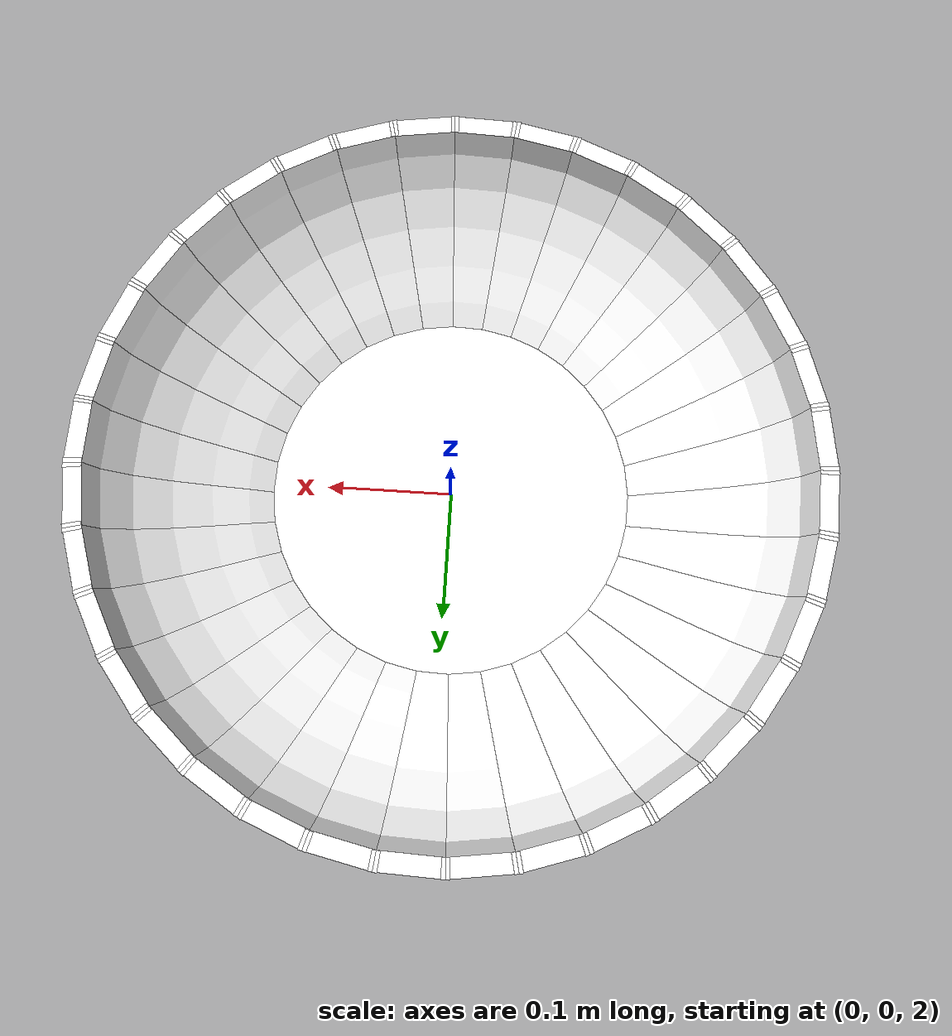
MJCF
<mujoco>
    <compiler angle="radian" />
    <compiler meshdir="bowl/stl/" />
    <asset>
        <mesh name="bowl_side" file="bowl_side.stl" />
        <mesh name="bowl_bottom" file="bowl_bottom.stl" />
    </asset>
    <worldbody>
        <body name="bowl" pos="0 0 2">
            <freejoint />
            <geom name="bowl_bottom" type="mesh" mesh="bowl_bottom" rgba="1 1 1 1" />
            <geom name="bowl_side_1" type="mesh" euler="0 0 0.1745" mesh="bowl_side" rgba="1 1 1 1" />
            <geom name="bowl_side_2" type="mesh" euler="0 0 0.3491" mesh="bowl_side" rgba="1 1 1 1" />
            <geom name="bowl_side_3" type="mesh" euler="0 0 0.5236" mesh="bowl_side" rgba="1 1 1 1" />
            <geom name="bowl_side_4" type="mesh" euler="0 0 0.6981" mesh="bowl_side" rgba="1 1 1 1" />
            <geom name="bowl_side_5" type="mesh" euler="0 0 0.8727" mesh="bowl_side" rgba="1 1 1 1" />
            <geom name="bowl_side_6" type="mesh" euler="0 0 1.0472" mesh="bowl_side" rgba="1 1 1 1" />
            <geom name="bowl_side_7" type="mesh" euler="0 0 1.2217" mesh="bowl_side" rgba="1 1 1 1" />
            <geom name="bowl_side_8" type="mesh" euler="0 0 1.3963" mesh="bowl_side" rgba="1 1 1 1" />
            <geom name="bowl_side_9" type="mesh" euler="0 0 1.5708" mesh="bowl_side" rgba="1 1 1 1" />
            <geom name="bowl_side_10" type="mesh" euler="0 0 1.7453" mesh="bowl_side" rgba="1 1 1 1" />
            <geom name="bowl_side_11" type="mesh" euler="0 0 1.9199" mesh="bowl_side" rgba="1 1 1 1" />
            <geom name="bowl_side_12" type="mesh" euler="0 0 2.0944" mesh="bowl_side" rgba="1 1 1 1" />
            <geom name="bowl_side_13" type="mesh" euler="0 0 2.2689" mesh="bowl_side" rgba="1 1 1 1" />
            <geom name="bowl_side_14" type="mesh" euler="0 0 2.4435" mesh="bowl_side" rgba="1 1 1 1" />
            <geom name="bowl_side_15" type="mesh" euler="0 0 2.6218" mesh="bowl_side" rgba="1 1 1 1" />
            <geom name="bowl_side_16" type="mesh" euler="0 0 2.7925" mesh="bowl_side" rgba="1 1 1 1" />
            <geom name="bowl_side_17" type="mesh" euler="0 0 2.9671" mesh="bowl_side" rgba="1 1 1 1" />
            <geom name="bowl_side_18" type="mesh" euler="0 0 3.1416" mesh="bowl_side" rgba="1 1 1 1" />
            <geom name="bowl_side_19" type="mesh" euler="0 0 3.3161" mesh="bowl_side" rgba="1 1 1 1" />
            <geom name="bowl_side_20" type="mesh" euler="0 0 3.4907" mesh="bowl_side" rgba="1 1 1 1" />
            <geom name="bowl_side_21" type="mesh" euler="0 0 3.6652" mesh="bowl_side" rgba="1 1 1 1" />
            <geom name="bowl_side_22" type="mesh" euler="0 0 3.8397" mesh="bowl_side" rgba="1 1 1 1" />
            <geom name="bowl_side_23" type="mesh" euler="0 0 4.0143" mesh="bowl_side" rgba="1 1 1 1" />
            <geom name="bowl_side_24" type="mesh" euler="0 0 4.1888" mesh="bowl_side" rgba="1 1 1 1" />
            <geom name="bowl_side_25" type="mesh" euler="0 0 4.3633" mesh="bowl_side" rgba="1 1 1 1" />
            <geom name="bowl_side_26" type="mesh" euler="0 0 4.5379" mesh="bowl_side" rgba="1 1 1 1" />
            <geom name="bowl_side_27" type="mesh" euler="0 0 4.7124" mesh="bowl_side" rgba="1 1 1 1" />
            <geom name="bowl_side_28" type="mesh" euler="0 0 4.8869" mesh="bowl_side" rgba="1 1 1 1" />
            <geom name="bowl_side_29" type="mesh" euler="0 0 5.0615" mesh="bowl_side" rgba="1 1 1 1" />
            <geom name="bowl_side_30" type="mesh" euler="0 0 5.2360" mesh="bowl_side" rgba="1 1 1 1" />
            <geom name="bowl_side_31" type="mesh" euler="0 0 5.4105" mesh="bowl_side" rgba="1 1 1 1" />
            <geom name="bowl_side_32" type="mesh" euler="0 0 5.5851" mesh="bowl_side" rgba="1 1 1 1" />
            <geom name="bowl_side_33" type="mesh" euler="0 0 5.7596" mesh="bowl_side" rgba="1 1 1 1" />
            <geom name="bowl_side_34" type="mesh" euler="0 0 5.9341" mesh="bowl_side" rgba="1 1 1 1" />
            <geom name="bowl_side_35" type="mesh" euler="0 0 6.1087" mesh="bowl_side" rgba="1 1 1 1" />
            <geom name="bowl_side_36" type="mesh" euler="0 0 6.2832" mesh="bowl_side" rgba="1 1 1 1" />
        </body>
    </worldbody>
</mujoco>
